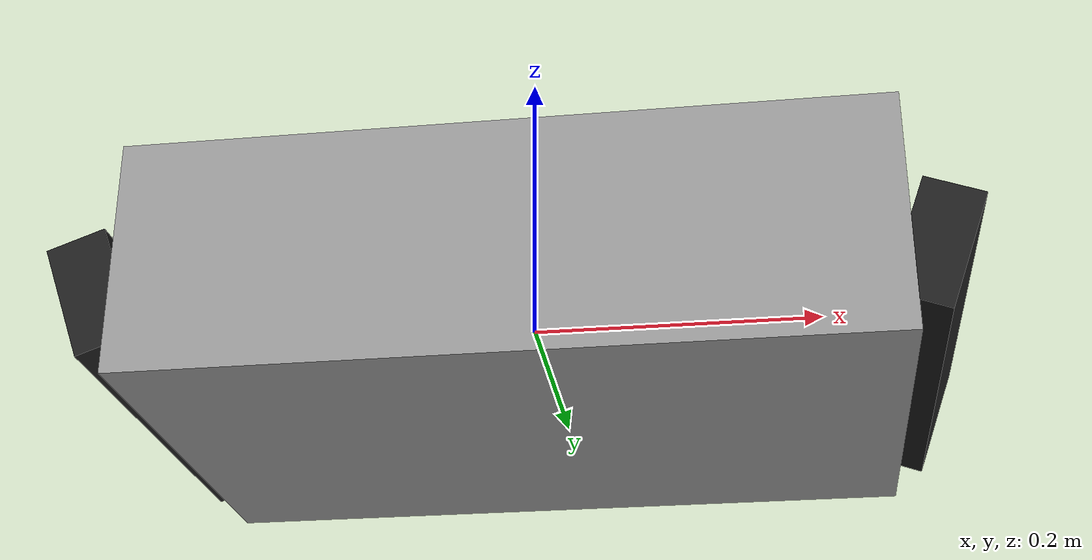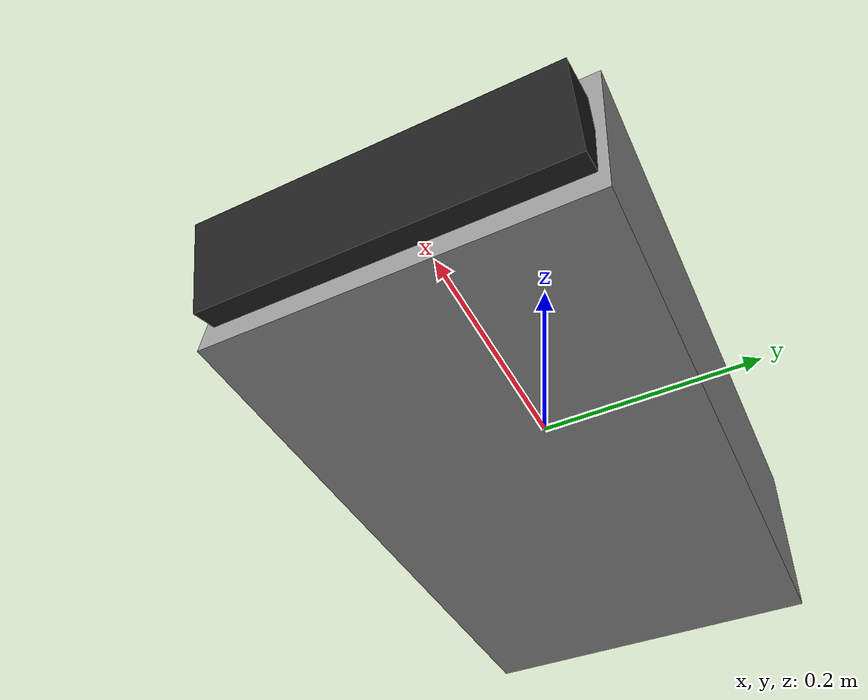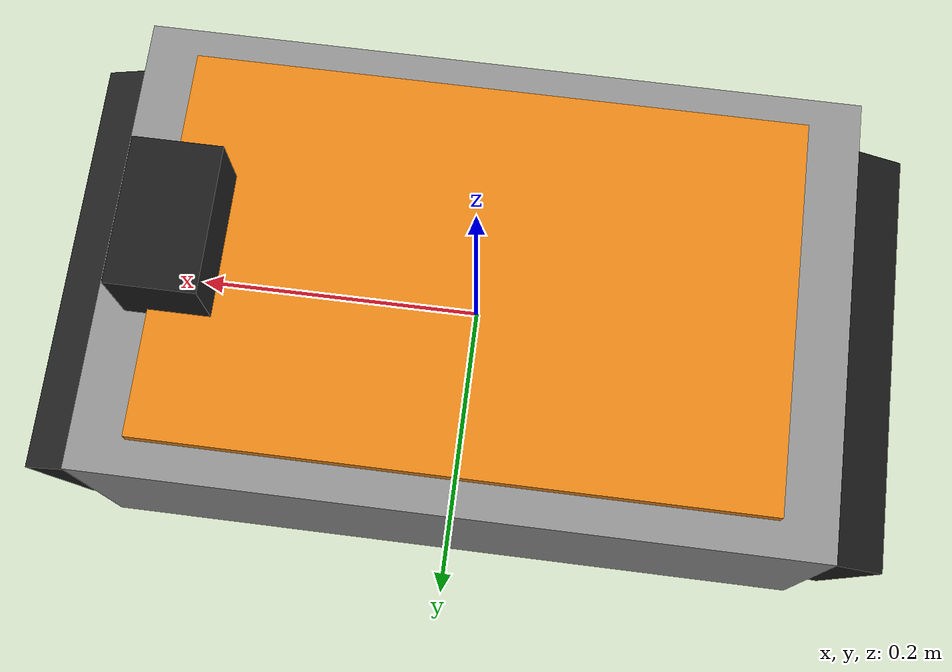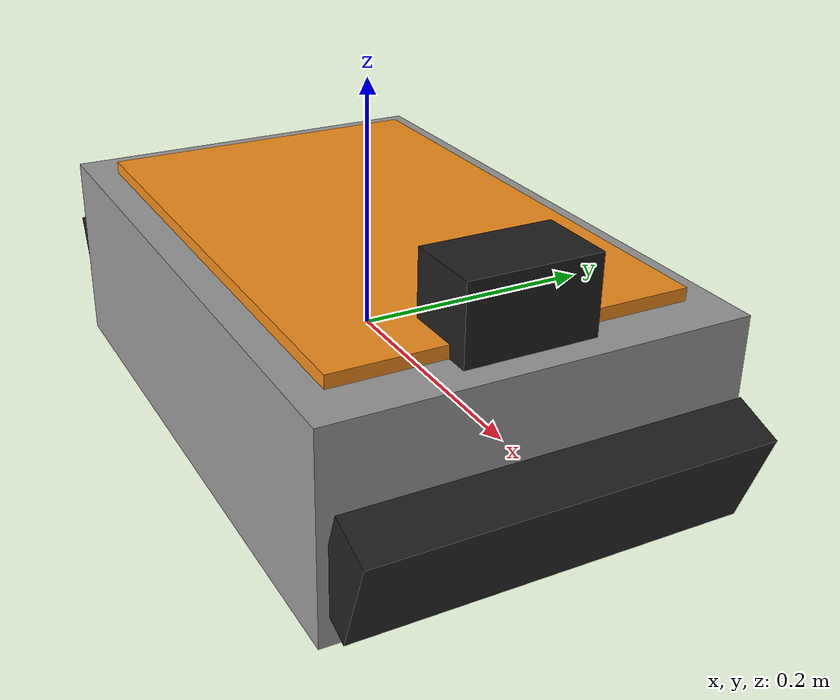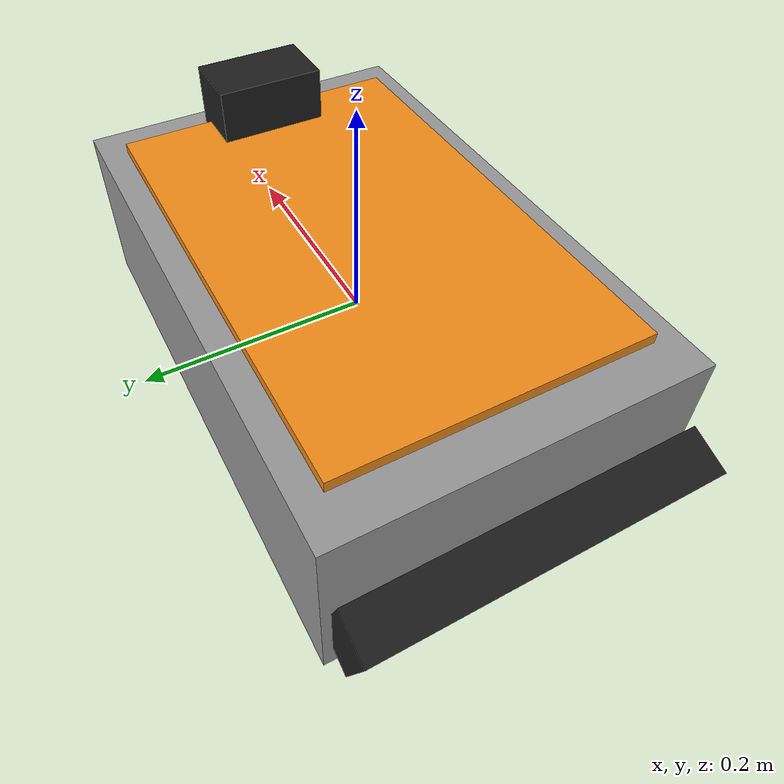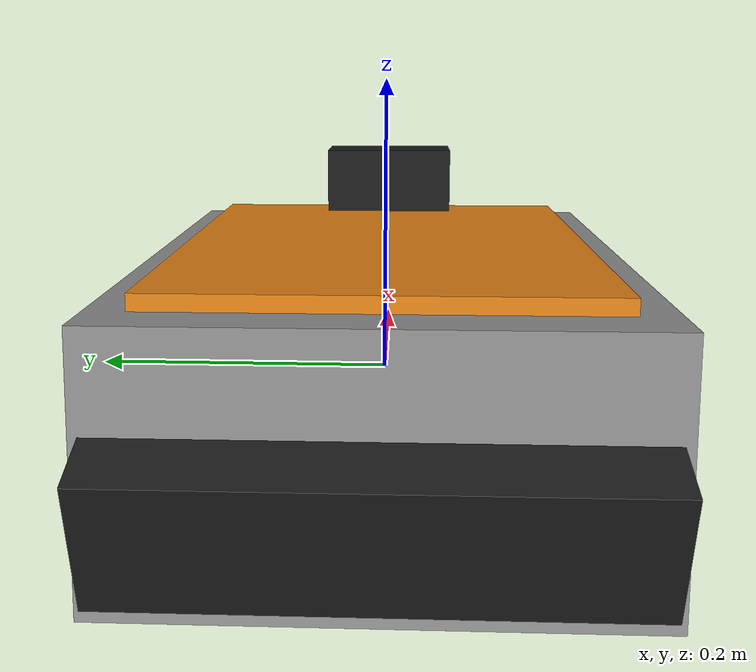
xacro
<?xml version="1.0"?>
<robot xmlns:xacro="http://www.ros.org/wiki/xacro">

  <!-- Chassis dimensions -->
  <xacro:property name="chassis_length" value="0.50"/>
  <xacro:property name="chassis_width" value="0.32"/>
  <xacro:property name="chassis_height" value="0.16"/>
  <xacro:property name="chassis_mass" value="15.0"/>

  <!-- Base link (Root Frame) -->
  <link name="base_link">
    <!-- Main Chassis Inertial -->
    <inertial>
      <origin xyz="0 0 0" rpy="0 0 0"/>
      <mass value="${chassis_mass}"/>
      <inertia
        ixx="${(1.0/12.0) * chassis_mass * (chassis_width*chassis_width + chassis_height*chassis_height)}"
        ixy="0.0"
        ixz="0.0"
        iyy="${(1.0/12.0) * chassis_mass * (chassis_length*chassis_length + chassis_height*chassis_height)}"
        iyz="0.0"
        izz="${(1.0/12.0) * chassis_mass * (chassis_length*chassis_length + chassis_width*chassis_width)}"/>
    </inertial>

    <!-- Main Chassis Collision -->
    <collision name="chassis_collision">
      <origin xyz="0 0 0" rpy="0 0 0"/>
      <geometry>
        <box size="${chassis_length} ${chassis_width} ${chassis_height}"/>
      </geometry>
    </collision>

    <!-- Main Chassis Visual -->
    <visual name="chassis_body">
      <origin xyz="0 0 0" rpy="0 0 0"/>
      <geometry>
        <box size="${chassis_length} ${chassis_width} ${chassis_height}"/>
      </geometry>
      <material name="chassis_grey"/>
    </visual>

    <!-- Top Deck Accent Plate (Visual) -->
    <visual name="top_plate_accent">
      <origin xyz="0 0 ${chassis_height/2 + 0.005}" rpy="0 0 0"/>
      <geometry>
        <box size="${chassis_length * 0.85} ${chassis_width * 0.85} 0.01"/>
      </geometry>
      <material name="naviguard_orange"/>
    </visual>

    <!-- Front Bumper / Skid Guard (Visual) -->
    <visual name="front_bumper">
      <origin xyz="${chassis_length/2 + 0.015} 0 -0.02" rpy="0 0.35 0"/>
      <geometry>
        <box size="0.04 ${chassis_width * 0.95} 0.08"/>
      </geometry>
      <material name="sensor_mast_black"/>
    </visual>

    <!-- Rear Bumper (Visual) -->
    <visual name="rear_bumper">
      <origin xyz="${-chassis_length/2 - 0.015} 0 -0.02" rpy="0 -0.35 0"/>
      <geometry>
        <box size="0.04 ${chassis_width * 0.95} 0.08"/>
      </geometry>
      <material name="sensor_mast_black"/>
    </visual>

    <!-- Sensor Mast / Camera Mount (Visual) -->
    <visual name="sensor_mount">
      <origin xyz="0.20 0 0.11" rpy="0 0 0"/>
      <geometry>
        <box size="0.06 0.10 0.06"/>
      </geometry>
      <material name="sensor_mast_black"/>
    </visual>
  </link>

  <!-- Gazebo material styling for base_link -->
  <gazebo reference="base_link">
    <material>
      <ambient>0.2 0.22 0.25 1.0</ambient>
      <diffuse>0.2 0.22 0.25 1.0</diffuse>
      <specular>0.3 0.3 0.3 1.0</specular>
    </material>
  </gazebo>

  <!-- base_footprint Link (Ground contact projection) -->
  <link name="base_footprint">
    <inertial>
      <origin xyz="0 0 0" rpy="0 0 0"/>
      <mass value="0.001"/>
      <inertia ixx="1e-6" ixy="0.0" ixz="0.0" iyy="1e-6" iyz="0.0" izz="1e-6"/>
    </inertial>
  </link>

  <joint name="base_footprint_joint" type="fixed">
    <parent link="base_link"/>
    <child link="base_footprint"/>
    <origin xyz="0 0 -0.12" rpy="0 0 0"/>
  </joint>

  <gazebo reference="base_footprint_joint">
    <preserveFixedJoint>true</preserveFixedJoint>
  </gazebo>

</robot>
